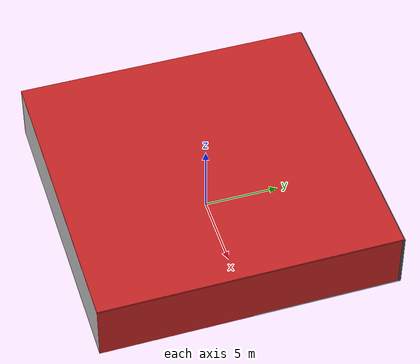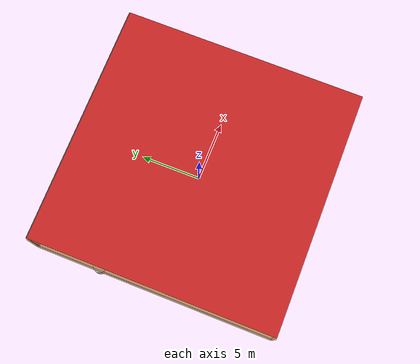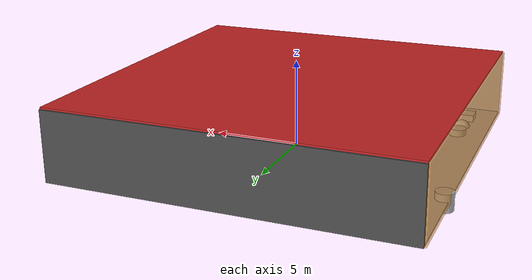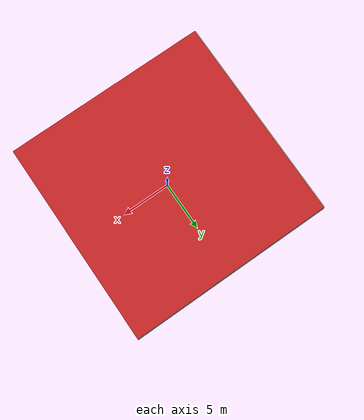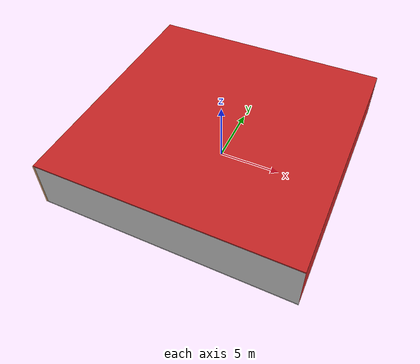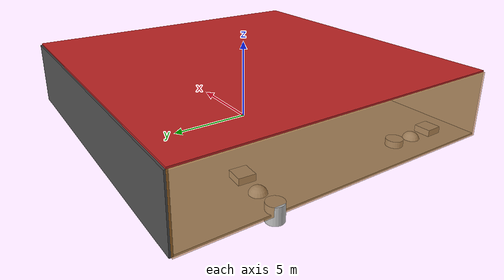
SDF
<sdf version="1.4">
 <world name="default">
  <physics type="ode">
   <max_step_size>0.001</max_step_size>
   <real_time_factor>1</real_time_factor>
   <real_time_update_rate>1000</real_time_update_rate>
   <gravity>0 0 -9.8</gravity>
  </physics>
  <scene><ambient>0.4 0.4 0.4 1</ambient><background>0.7 0.7 0.7 1</background><shadows>1</shadows></scene>
  <model name="Surrounding">
   <static>1</static>
   <link name="Ceiling">
    <collision name="Ceiling_Collision"><geometry><box><size>20 20 0.1</size></box></geometry></collision>
    <visual name="Ceiling_Visual">
     <geometry><box><size>20 20 0.1</size></box></geometry>
     <material>
      <script><uri>file://media/materials/scripts/gazebo.material</uri><name>Gazebo/Red</name></script>
     </material>
    </visual>
    <pose>0 0 4.05 0 0 0</pose>
   </link>
   <link name="Wall_South">
    <collision name="Wall_South_Collision">
     <geometry><box><size>20 0 4</size></box></geometry>
     <pose>0 0 2 0 -0 0</pose>
    </collision>
    <visual name="Wall_South_Visual">
     <pose>0 0 2 0 -0 0</pose>
     <geometry><box><size>20 0 4</size></box></geometry>
     <material>
      <script><uri>file://media/materials/scripts/gazebo.material</uri><name>Gazebo/CloudySky</name></script>
     </material>
    </visual>
    <velocity_decay><linear>0</linear><angular>0</angular></velocity_decay>
    <pose>0 -10 0 0 -0 0</pose>
   </link>
   <link name="Wall_East">
    <collision name="Wall_21_Collision">
     <geometry><box><size>20 0 4</size></box></geometry>
     <pose>0 0 2 0 -0 0</pose>
    </collision>
    <visual name="Wall_21_Visual">
     <pose>0 0 2 0 -0 0</pose>
     <geometry><box><size>20 0 4</size></box></geometry>
     <material>
      <script><uri>file://media/materials/scripts/gazebo.material</uri><name>Gazebo/Red</name></script>
     </material>
    </visual>
    <velocity_decay><linear>0</linear><angular>0</angular></velocity_decay>
    <pose>10 0 0 0 -0 1.5708</pose>
   </link>
   <link name="Wall_North">
    <collision name="Wall_22_Collision">
     <geometry><box><size>20 0.2 4</size></box></geometry>
     <pose>0 0 2 0 -0 0</pose>
    </collision>
    <visual name="Wall_22_Visual">
     <pose>0 0 2 0 -0 0</pose>
     <geometry><box><size>20 0.2 4</size></box></geometry>
     <material>
      <script><uri>file://media/materials/scripts/gazebo.material</uri><name>Gazebo/DarkGrey</name></script>
     </material>
    </visual>
    <velocity_decay><linear>0</linear><angular>0</angular></velocity_decay>
    <pose>0 10 0 0 -0 0</pose>
   </link>
   <link name="Wall_West">
    <collision name="Wall_23_Collision">
     <geometry><box><size>20 0.2 4</size></box></geometry>
     <pose>0 0 2 0 -0 0</pose>
    </collision>
    <visual name="Wall_23_Visual">
     <pose>0 0 2 0 -0 0</pose>
     <geometry><box><size>20 0.2 4</size></box></geometry>
     <material>
      <script>
       <uri>file://media/materials/scripts/gazebo.material</uri>
       <name>Gazebo/OrangeTransparent</name>
      </script>
     </material>
    </visual>
    <velocity_decay><linear>0</linear><angular>0</angular></velocity_decay>
    <pose>-10 0 0 0 0 -1.5708</pose>
   </link>
   <link name="Ground_link">
    <collision name="collision">
     <pose>0 0 .05 0 -0 0</pose>
     <geometry><box><size>20 20 0.1</size></box></geometry>
    </collision>
    <visual name="visual">
     <pose>0 0 .05 0 -0 0</pose>
     <geometry><box><size>20 20 0.1</size></box></geometry>
     <material>
      <script><uri>file://media/materials/scripts/gazebo.material</uri><name>Gazebo/JointAnchor</name></script>
     </material>
    </visual>
   </link>
   <static>1</static>
  </model>
  <spherical_coordinates>
   <surface_model>EARTH_WGS84</surface_model>
   <latitude_deg>0</latitude_deg>
   <longitude_deg>0</longitude_deg>
   <elevation>0</elevation>
   <heading_deg>0</heading_deg>
  </spherical_coordinates>
  <light name="lightball_0" type="diffuse">
   <diffuse>0.8 0.8 0.8 1</diffuse>
   <specular>0.2 0.2 0.2 1</specular>
   <attenuation>
    <range>100</range>
    <constant>0.7</constant>
    <linear>0.01</linear>
    <quadratic>0.001</quadratic>
   </attenuation>
   <direction>-0.5 0.1 -0.9</direction>
   <pose>-7.31908008385 -2.94506791887 1.38990693963 0 0 0</pose>
  </light>
  <light name="lightball_1" type="diffuse">
   <diffuse>0.8 0.8 0.8 1</diffuse>
   <specular>0.2 0.2 0.2 1</specular>
   <attenuation>
    <range>100</range>
    <constant>0.7</constant>
    <linear>0.01</linear>
    <quadratic>0.001</quadratic>
   </attenuation>
   <direction>-0.5 0.1 -0.9</direction>
   <pose>6.46064061736 -1.66638480847 0.685850016784 0 0 0</pose>
  </light>
  <light name="lightball_2" type="diffuse">
   <diffuse>0.8 0.8 0.8 1</diffuse>
   <specular>0.2 0.2 0.2 1</specular>
   <attenuation>
    <range>100</range>
    <constant>0.7</constant>
    <linear>0.01</linear>
    <quadratic>0.001</quadratic>
   </attenuation>
   <direction>-0.5 0.1 -0.9</direction>
   <pose>-5.16729963537 9.07402634531 3.52541447345 0 0 0</pose>
  </light>
  <light name="lightball_3" type="diffuse">
   <diffuse>0.8 0.8 0.8 1</diffuse>
   <specular>0.2 0.2 0.2 1</specular>
   <attenuation>
    <range>100</range>
    <constant>0.7</constant>
    <linear>0.01</linear>
    <quadratic>0.001</quadratic>
   </attenuation>
   <direction>-0.5 0.1 -0.9</direction>
   <pose>6.63034816159 4.32106003812 1.07932964801 0 0 0</pose>
  </light>
  <light name="lightball_4" type="diffuse">
   <diffuse>0.8 0.8 0.8 1</diffuse>
   <specular>0.2 0.2 0.2 1</specular>
   <attenuation>
    <range>100</range>
    <constant>0.7</constant>
    <linear>0.01</linear>
    <quadratic>0.001</quadratic>
   </attenuation>
   <direction>-0.5 0.1 -0.9</direction>
   <pose>8.61471091597 9.19683977644 0.629207364413 0 0 0</pose>
  </light>
  <light name="lightball_5" type="diffuse">
   <diffuse>0.8 0.8 0.8 1</diffuse>
   <specular>0.2 0.2 0.2 1</specular>
   <attenuation>
    <range>100</range>
    <constant>0.7</constant>
    <linear>0.01</linear>
    <quadratic>0.001</quadratic>
   </attenuation>
   <direction>-0.5 0.1 -0.9</direction>
   <pose>-1.0549068615 5.44564552688 3.87341104034 0 0 0</pose>
  </light>
  <light name="lightball_6" type="diffuse">
   <diffuse>0.8 0.8 0.8 1</diffuse>
   <specular>0.2 0.2 0.2 1</specular>
   <attenuation>
    <range>100</range>
    <constant>0.7</constant>
    <linear>0.01</linear>
    <quadratic>0.001</quadratic>
   </attenuation>
   <direction>-0.5 0.1 -0.9</direction>
   <pose>-0.555358242415 2.04281779682 3.1438127889 0 0 0</pose>
  </light>
  <light name="lightball_7" type="diffuse">
   <diffuse>0.8 0.8 0.8 1</diffuse>
   <specular>0.2 0.2 0.2 1</specular>
   <attenuation>
    <range>100</range>
    <constant>0.7</constant>
    <linear>0.01</linear>
    <quadratic>0.001</quadratic>
   </attenuation>
   <direction>-0.5 0.1 -0.9</direction>
   <pose>0.0205027642723 1.09904943677 2.65267754414 0 0 0</pose>
  </light>
  <light name="lightball_8" type="diffuse">
   <diffuse>0.8 0.8 0.8 1</diffuse>
   <specular>0.2 0.2 0.2 1</specular>
   <attenuation>
    <range>100</range>
    <constant>0.7</constant>
    <linear>0.01</linear>
    <quadratic>0.001</quadratic>
   </attenuation>
   <direction>-0.5 0.1 -0.9</direction>
   <pose>4.9958497416 3.83715722938 1.32063984004 0 0 0</pose>
  </light>
  <light name="lightball_9" type="diffuse">
   <diffuse>0.8 0.8 0.8 1</diffuse>
   <specular>0.2 0.2 0.2 1</specular>
   <attenuation>
    <range>100</range>
    <constant>0.7</constant>
    <linear>0.01</linear>
    <quadratic>0.001</quadratic>
   </attenuation>
   <direction>-0.5 0.1 -0.9</direction>
   <pose>7.43385190141 9.86805416018 1.06412506789 0 0 0</pose>
  </light>
  <light name="lightball_10" type="diffuse">
   <diffuse>0.8 0.8 0.8 1</diffuse>
   <specular>0.2 0.2 0.2 1</specular>
   <attenuation>
    <range>100</range>
    <constant>0.7</constant>
    <linear>0.01</linear>
    <quadratic>0.001</quadratic>
   </attenuation>
   <direction>-0.5 0.1 -0.9</direction>
   <pose>3.79843212353 4.22714349316 2.34542049589 0 0 0</pose>
  </light>
  <light name="lightball_11" type="diffuse">
   <diffuse>0.8 0.8 0.8 1</diffuse>
   <specular>0.2 0.2 0.2 1</specular>
   <attenuation>
    <range>100</range>
    <constant>0.7</constant>
    <linear>0.01</linear>
    <quadratic>0.001</quadratic>
   </attenuation>
   <direction>-0.5 0.1 -0.9</direction>
   <pose>8.57903432905 6.31666319182 2.86254645045 0 0 0</pose>
  </light>
  <light name="lightball_12" type="diffuse">
   <diffuse>0.8 0.8 0.8 1</diffuse>
   <specular>0.2 0.2 0.2 1</specular>
   <attenuation>
    <range>100</range>
    <constant>0.7</constant>
    <linear>0.01</linear>
    <quadratic>0.001</quadratic>
   </attenuation>
   <direction>-0.5 0.1 -0.9</direction>
   <pose>-1.48663336125 -7.19349152981 2.05242684297 0 0 0</pose>
  </light>
  <light name="lightball_13" type="diffuse">
   <diffuse>0.8 0.8 0.8 1</diffuse>
   <specular>0.2 0.2 0.2 1</specular>
   <attenuation>
    <range>100</range>
    <constant>0.7</constant>
    <linear>0.01</linear>
    <quadratic>0.001</quadratic>
   </attenuation>
   <direction>-0.5 0.1 -0.9</direction>
   <pose>5.23268187857 -1.56181241349 0.672729974177 0 0 0</pose>
  </light>
  <include>
   <uri>model://textured_shapes</uri>
   <pose>-8.38368645522 -6.32777115063 0 0 0 0.0177053930434</pose>
  </include>
  <include>
   <uri>model://textured_shapes</uri>
   <pose>-8.23057628296 4.58949232805 0 0 0 1.51189687426</pose>
  </include>
  <include>
   <uri>model://construction_cone</uri>
   <pose>-0.402725852953 -2.36336089563 0 0 0 2.43054077312</pose>
  </include>
  <include><uri>model://cabinet</uri><pose>7.56116407257 -2.22702685349 0 0 0 0.541439068907</pose></include>
 </world>
</sdf>

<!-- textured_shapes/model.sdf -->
<sdf version="1.6">
  <model name="textured_shapes">
    <pose>0 0 0.5 0 0 0</pose>
    <link name="box">
      <pose>0 -1.5 0 0 0 0</pose>
      <collision name="collision">
        <geometry>
          <box>
            <size>1 1 1</size>
          </box>
        </geometry>
      </collision>
      <visual name="visual">
        <geometry>
          <box>
            <size>1 1 1</size>
          </box>
        </geometry>
        <material>
          <script>
            <uri>model://../model_source/models/textured_shapes/materials/scripts</uri>
            <uri>model://../model_source/models/textured_shapes/materials/textures</uri>
            <name>TexturedShape/Squares</name>
          </script>
        </material>
      </visual>
    </link>
    <link name="sphere">
      <collision name="collision">
        <geometry>
          <sphere>
            <radius>0.5</radius>
          </sphere>
        </geometry>
      </collision>
      <visual name="visual">
        <geometry>
          <sphere>
            <radius>0.5</radius>
          </sphere>
        </geometry>
        <material>
          <script>
            <uri>model://../model_source/models/textured_shapes/materials/scripts</uri>
            <uri>model://../model_source/models/textured_shapes/materials/textures</uri>
            <name>TexturedShape/Squares</name>
          </script>
        </material>
      </visual>
    </link>
    <link name="cylinder">
      <pose>0 1.5 0 0 0 0</pose>
      <collision name="collision">
        <geometry>
          <cylinder>
            <radius>0.5</radius>
            <length>1</length>
          </cylinder>
        </geometry>
      </collision>
      <visual name="visual">
        <geometry>
          <cylinder>
            <radius>0.5</radius>
            <length>1</length>
          </cylinder>
        </geometry>
        <material>
          <script>
            <uri>model://../model_source/models/textured_shapes/materials/scripts</uri>
            <uri>model://../model_source/models/textured_shapes/materials/textures</uri>
            <name>TexturedShape/Squares</name>
          </script>
        </material>
      </visual>
    </link>
  </model>
</sdf>

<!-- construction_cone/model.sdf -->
<sdf version="1.5">
  <model name="Construction Cone">
    <link name="link">
      <collision name="collision">
        <geometry>
          <mesh>
            <scale>10 10 10</scale>
            <uri>file://isr-testbed/construction_cone/meshes/construction_cone.dae</uri>
          </mesh>
        </geometry>
      </collision>
      <visual name="visual">
        <geometry>
          <mesh>
            <scale>10 10 10</scale>
            <uri>file://isr-testbed/construction_cone/meshes/construction_cone.dae</uri>
          </mesh>
        </geometry>
      </visual>
    </link>
  </model>
</sdf>

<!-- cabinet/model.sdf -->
<sdf version="1.5">
  <model name="cabinet">
    <static>true</static>
    <link name="cabinet_bottom_plate">
      <inertial>
        <pose>0 0 -1 0 0 0</pose>
        <inertia>
          <ixx>2.050000</ixx>
          <ixy>0</ixy>
          <ixz>0</ixz>
          <iyy>2.050000</iyy>
          <iyz>0</iyz>
          <izz>2.050000</izz>
        </inertia>
        <mass>25.000000</mass>
      </inertial>
      <collision name="cabinet_bottom_plate_geom">
        <pose>0 0 0.010000 0 0 0</pose>
        <geometry>
          <box>
            <size>0.450000 0.450000 0.020000</size>
          </box>
        </geometry>
      </collision>
      <visual name="cabinet_bottom_plate_geom_visual">
        <pose>0 0 0.010000 0 0 0</pose>
        <geometry>
          <box>
            <size>0.450000 0.450000 0.020000</size>
          </box>
        </geometry>
        <material>
          <script>
            <uri>model://media/materials/scripts/gazebo.material</uri>
            <name>Gazebo/Wood</name>
          </script>
        </material>
      </visual>
      <collision name="cabinet_bottom_plate_geom_cabinet_back_plate">
        <pose>0.235000 0 0.510000 0 0 0</pose>
        <geometry>
          <box>
            <size>0.020000 0.450000 1.020000</size>
          </box>
        </geometry>
      </collision>
      <visual name="cabinet_bottom_plate_geom_cabinet_back_plate_visual">
        <pose>0.235000 0 0.510000 0 0 0</pose>
        <geometry>
          <box>
            <size>0.020000 0.450000 1.020000</size>
          </box>
        </geometry>
        <material>
          <script>
            <uri>model://media/materials/scripts/gazebo.material</uri>
            <name>Gazebo/Wood</name>
          </script>
        </material>
      </visual>
      <collision name="cabinet_bottom_plate_geom_cabinet_left_plate">
        <pose>0 0.235000 0.510000 0 0 0</pose>
        <geometry>
          <box>
            <size>0.450000 0.020000 1.020000</size>
          </box>
        </geometry>
      </collision>
      <visual name="cabinet_bottom_plate_geom_cabinet_left_plate_visual">
        <pose>0 0.235000 0.510000 0 0 0</pose>
        <geometry>
          <box>
            <size>0.450000 0.020000 1.020000</size>
          </box>
        </geometry>
        <material>
          <script>
            <uri>model://media/materials/scripts/gazebo.material</uri>
            <name>Gazebo/Wood</name>
          </script>
        </material>
      </visual>
      <collision name="cabinet_bottom_plate_geom_cabinet_middle_plate">
        <pose>0 0 0.510000 0 0 0</pose>
        <geometry>
          <box>
            <size>0.450000 0.450000 0.020000</size>
          </box>
        </geometry>
      </collision>
      <visual name="cabinet_bottom_plate_geom_cabinet_middle_plate_visual">
        <pose>0 0 0.510000 0 0 0</pose>
        <geometry>
          <box>
            <size>0.450000 0.450000 0.020000</size>
          </box>
        </geometry>
        <material>
          <script>
            <uri>model://media/materials/scripts/gazebo.material</uri>
            <name>Gazebo/Wood</name>
          </script>
        </material>
      </visual>
      <collision name="cabinet_bottom_plate_geom_cabinet_right_plate">
        <pose>0 -0.235000 0.510000 0 0 0</pose>
        <geometry>
          <box>
            <size>0.450000 0.020000 1.020000</size>
          </box>
        </geometry>
      </collision>
      <visual name="cabinet_bottom_plate_geom_cabinet_right_plate_visual">
        <pose>0 -0.235000 0.510000 0 0 0</pose>
        <geometry>
          <box>
            <size>0.450000 0.020000 1.020000</size>
          </box>
        </geometry>
        <material>
          <script>
            <uri>model://media/materials/scripts/gazebo.material</uri>
            <name>Gazebo/Wood</name>
          </script>
        </material>
      </visual>
      <collision name="cabinet_bottom_plate_geom_cabinet_top_plate">
        <pose>0 0 1.010000 0 0 0</pose>
        <geometry>
          <box>
            <size>0.450000 0.450000 0.020000</size>
          </box>
        </geometry>
      </collision>
      <visual name="cabinet_bottom_plate_geom_cabinet_top_plate_visual">
        <pose>0 0 1.010000 0 0 0</pose>
        <geometry>
          <box>
            <size>0.450000 0.450000 0.020000</size>
          </box>
        </geometry>
        <material>
          <script>
            <uri>model://media/materials/scripts/gazebo.material</uri>
            <name>Gazebo/Wood</name>
          </script>
        </material>
      </visual>
    </link>
  </model>
</sdf>
